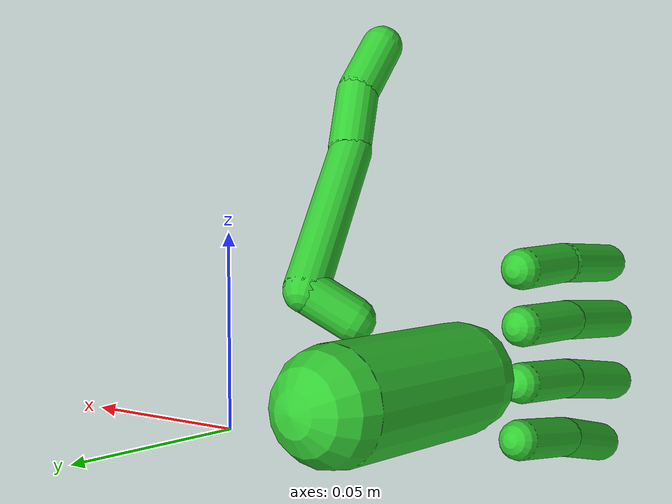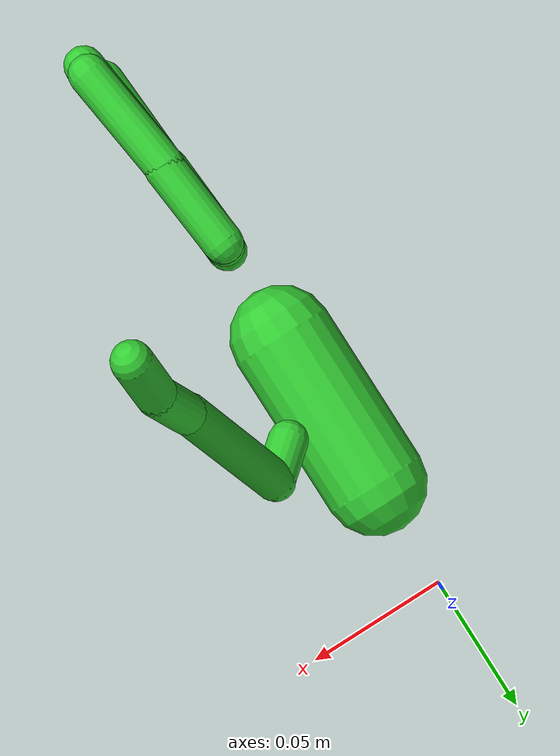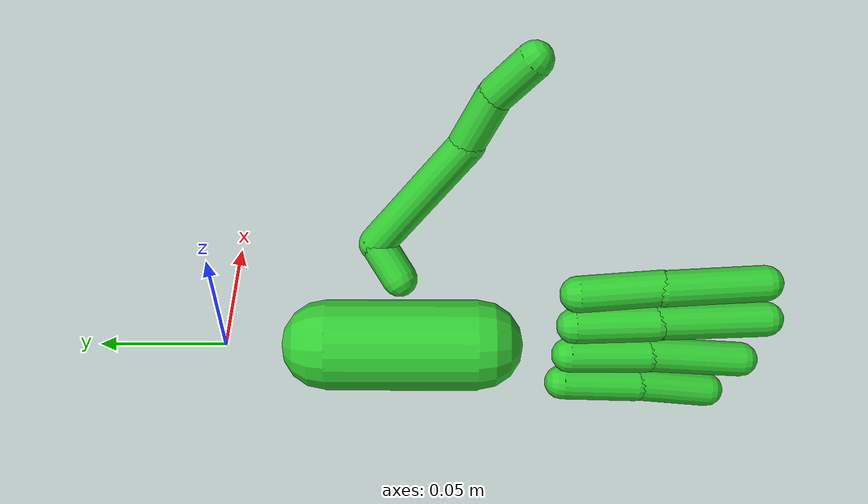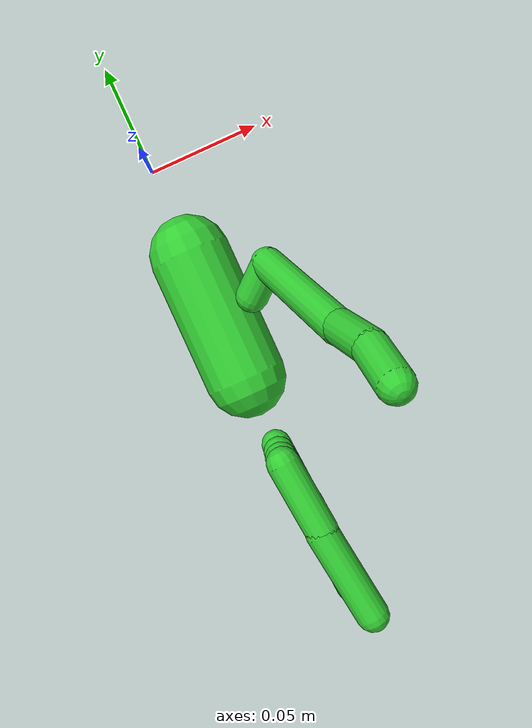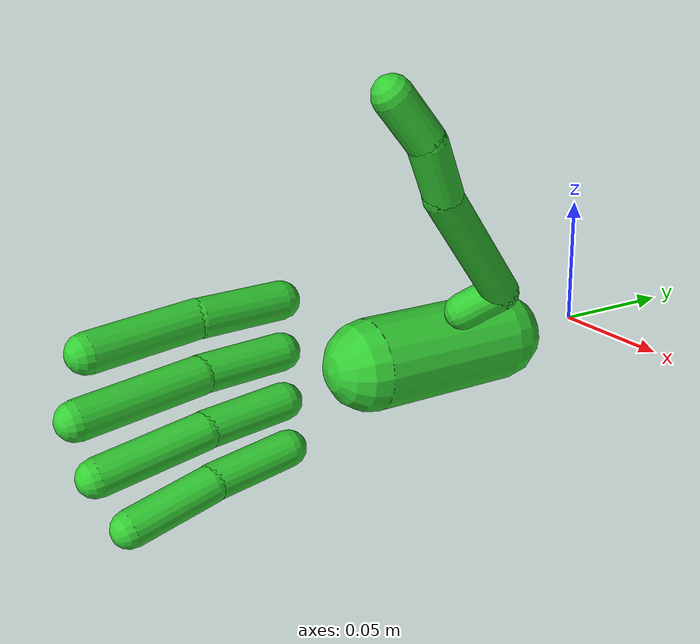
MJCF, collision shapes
<mujoco model="inspire_hand_right">
  <compiler angle="radian" meshdir="./meshes"/>

  <asset>
    <mesh name="R_hand_base_link" file="R_hand_base_link.STL"/>
    <mesh name="Link11_R" file="Link11_R.STL"/>
    <mesh name="Link12_R" file="Link12_R.STL"/>
    <mesh name="Link13_R" file="Link13_R.STL"/>
    <mesh name="Link14_R" file="Link14_R.STL"/>
    <mesh name="Link15_R" file="Link15_R.STL"/>
    <mesh name="Link16_R" file="Link16_R.STL"/>
    <mesh name="Link17_R" file="Link17_R.STL"/>
    <mesh name="Link18_R" file="Link18_R.STL"/>
    <mesh name="Link19_R" file="Link19_R.STL"/>
    <mesh name="Link20_R" file="Link20_R.STL"/>
    <mesh name="Link21_R" file="Link21_R.STL"/>
    <mesh name="Link22_R" file="Link22_R.STL"/>
  </asset>

  <worldbody>
    <!-- ── Base de la mano ─────────────────────────────────────────── -->
    <body name="R_hand_base_link" pos="0 0 0">
      <body name="R_hand_rotated_180" pos="0 0 0" quat="0 0 1 0">
      <inertial pos="-0.002551 -0.066047 0.0019357" mass="0.14143"
                fullinertia="0.0001234 8.3835e-05 7.7231e-05 2.1995e-06 1.7694e-06 1.5968e-06"/>
      <!-- Visual -->
      <geom name="R_hand_base_visual" type="mesh" mesh="R_hand_base_link"
            contype="0" conaffinity="0" group="1" rgba="0.8 0.8 0.8 1"/>
      <!-- Colisión base (cápsula simplificada) -->
      <geom name="R_hand_base_col" type="capsule" size="0.018" fromto="0 -0.04 0  0 -0.1 0"
            rgba="0.2 0.8 0.2 0.3"/>

      <!-- ── PULGAR ──────────────────────────────────────────────── -->
      <body name="R_thumb_proximal_base" pos="-0.01696 -0.0691 -0.02045"
            quat="0.499998 0.5 -0.5 0.500002">
        <inertial pos="-0.0048064 0.0009382 -0.00757" mass="0.0018869"
                  diaginertia="8.66026e-08 6.8732e-08 4.94194e-08"/>
        <joint name="R_thumb_proximal_yaw_joint" axis="0 0 -1"
               range="-0.1 1.3" damping="0.05" frictionloss="0.01"/>
        <geom type="mesh" mesh="Link11_R" contype="0" conaffinity="0" group="1" rgba="0.8 0.8 0.8 1"/>
        <geom type="capsule" size="0.007" fromto="0 0 0  -0.009 0.011 -0.009"
              rgba="0.2 0.8 0.2 0.3"/>

        <body name="R_thumb_proximal" pos="-0.0088099 0.010892 -0.00925"
              quat="0.0996843 0.0996847 0.700046 0.700044">
          <inertial pos="0.021932 0.012785 -0.0080386" mass="0.0066075"
                    diaginertia="2.78601e-06 2.43933e-06 8.64566e-07"/>
          <joint name="R_thumb_proximal_pitch_joint" axis="0 0 1"
                 range="0 0.5" damping="0.05" frictionloss="0.01"/>
          <geom type="mesh" mesh="Link12_R" contype="0" conaffinity="0" group="1" rgba="0.8 0.8 0.8 1"/>
          <geom type="capsule" size="0.007" fromto="0 0 0  0.044 0.035 -0.001"
                rgba="0.2 0.8 0.2 0.3"/>

          <body name="R_thumb_intermediate" pos="0.04407 0.034553 -0.0008">
            <inertial pos="0.0095544 -0.0016282 -0.0071997" mass="0.0037847"
                      diaginertia="4.6531e-07 4.48089e-07 2.45661e-07"/>
            <joint name="R_thumb_intermediate_joint" axis="0 0 1"
                   range="0 0.8" damping="0.05" frictionloss="0.01"/>
            <geom type="mesh" mesh="Link13_R" contype="0" conaffinity="0" group="1" rgba="0.8 0.8 0.8 1"/>
            <geom type="capsule" size="0.007" fromto="0 0 0  0.02 0.01 -0.001"
                  rgba="0.2 0.8 0.2 0.3"/>

            <body name="R_thumb_distal" pos="0.020248 0.010156 -0.0012">
              <inertial pos="0.0092888 0.0049529 -0.0060033" mass="0.0033441"
                        diaginertia="2.0026e-07 1.95247e-07 8.1593e-08"/>
              <joint name="R_thumb_distal_joint" axis="0 0 1"
                     range="0 1.2" damping="0.05" frictionloss="0.01"/>
              <geom type="mesh" mesh="Link14_R" contype="0" conaffinity="0" group="1" rgba="0.8 0.8 0.8 1"/>
              <geom type="capsule" size="0.007" fromto="0 0 0  0.015 0.013 -0.004"
                    rgba="0.2 0.8 0.2 0.3"/>
              <!-- Fingertip site -->
              <site name="R_thumb_tip" pos="0.015 0.013 -0.004" size="0.005" rgba="1 0 0 1"/>
            </body>
          </body>
        </body>
      </body>

      <!-- ── ÍNDICE ──────────────────────────────────────────────── -->
      <body name="R_index_proximal" pos="0.00028533 -0.13653 -0.032268"
            quat="0.0174454 -0.999848 0 0">
        <inertial pos="0.0012259 0.011942 -0.0060001" mass="0.0042403"
                  diaginertia="6.9398e-07 6.62871e-07 2.10909e-07"/>
        <joint name="R_index_proximal_joint" axis="0 0 1"
               range="0 1.7" damping="0.05" frictionloss="0.01"/>
        <geom type="mesh" mesh="Link15_R" contype="0" conaffinity="0" group="1" rgba="0.8 0.8 0.8 1"/>
        <geom type="capsule" size="0.007" fromto="0 0 0  -0.003 0.032 -0.001"
              rgba="0.2 0.8 0.2 0.3"/>

        <body name="R_index_intermediate" pos="-0.0026138 0.032026 -0.001">
          <inertial pos="0.0019697 0.019589 -0.005" mass="0.0045683"
                    diaginertia="7.8179e-07 7.72465e-07 8.47212e-08"/>
          <joint name="R_index_intermediate_joint" axis="0 0 1"
                 range="0 1.7" damping="0.05" frictionloss="0.01"/>
          <geom type="mesh" mesh="Link16_R" contype="0" conaffinity="0" group="1" rgba="0.8 0.8 0.8 1"/>
          <geom type="capsule" size="0.007" fromto="0 0 0  -0.005 0.04 -0.004"
                rgba="0.2 0.8 0.2 0.3"/>
          <site name="R_index_tip" pos="-0.005 0.04 -0.004" size="0.005" rgba="0 1 0 1"/>
        </body>
      </body>

      <!-- ── CORAZÓN ─────────────────────────────────────────────── -->
      <body name="R_middle_proximal" pos="0.00028533 -0.1371 -0.01295"
            quat="-3.67321e-06 -1 0 0">
        <inertial pos="0.001297 0.011934 -0.0060001" mass="0.0042403"
                  diaginertia="6.9397e-07 6.62865e-07 2.10915e-07"/>
        <joint name="R_middle_proximal_joint" axis="0 0 1"
               range="0 1.7" damping="0.05" frictionloss="0.01"/>
        <geom type="mesh" mesh="Link17_R" contype="0" conaffinity="0" group="1" rgba="0.8 0.8 0.8 1"/>
        <geom type="capsule" size="0.007" fromto="0 0 0  -0.002 0.032 -0.001"
              rgba="0.2 0.8 0.2 0.3"/>

        <body name="R_middle_intermediate" pos="-0.0024229 0.032041 -0.001">
          <inertial pos="0.001921 0.020796 -0.005" mass="0.0050396"
                    diaginertia="9.8384e-07 9.73279e-07 9.14014e-08"/>
          <joint name="R_middle_intermediate_joint" axis="0 0 1"
                 range="0 1.7" damping="0.05" frictionloss="0.01"/>
          <geom type="mesh" mesh="Link18_R" contype="0" conaffinity="0" group="1" rgba="0.8 0.8 0.8 1"/>
          <geom type="capsule" size="0.007" fromto="0 0 0  -0.005 0.045 -0.004"
                rgba="0.2 0.8 0.2 0.3"/>
          <site name="R_middle_tip" pos="-0.005 0.045 -0.004" size="0.005" rgba="0 0 1 1"/>
        </body>
      </body>

      <!-- ── ANULAR ───────────────────────────────────────────────── -->
      <body name="R_ring_proximal" pos="0.00028533 -0.13691 0.0062872"
            quat="0.0261933 0.999657 0 0">
        <inertial pos="0.001297 0.011934 -0.0060002" mass="0.0042403"
                  diaginertia="6.9397e-07 6.62865e-07 2.10915e-07"/>
        <joint name="R_ring_proximal_joint" axis="0 0 1"
               range="0 1.7" damping="0.05" frictionloss="0.01"/>
        <geom type="mesh" mesh="Link19_R" contype="0" conaffinity="0" group="1" rgba="0.8 0.8 0.8 1"/>
        <geom type="capsule" size="0.007" fromto="0 0 0  -0.002 0.032 -0.001"
              rgba="0.2 0.8 0.2 0.3"/>

        <body name="R_ring_intermediate" pos="-0.0024229 0.032041 -0.001">
          <inertial pos="0.0021753 0.019567 -0.005" mass="0.0045683"
                    diaginertia="7.8177e-07 7.72448e-07 8.4722e-08"/>
          <joint name="R_ring_intermediate_joint" axis="0 0 1"
                 range="0 1.7" damping="0.05" frictionloss="0.01"/>
          <geom type="mesh" mesh="Link20_R" contype="0" conaffinity="0" group="1" rgba="0.8 0.8 0.8 1"/>
          <geom type="capsule" size="0.007" fromto="0 0 0  -0.002 0.04 -0.004"
                rgba="0.2 0.8 0.2 0.3"/>
          <site name="R_ring_tip" pos="-0.002 0.04 -0.004" size="0.005" rgba="0 1 1 1"/>
        </body>
      </body>

      <!-- ── MEÑIQUE ─────────────────────────────────────────────── -->
      <body name="R_pinky_proximal" pos="0.00028533 -0.13571 0.025488"
            quat="0.0523224 0.99863 0 0">
        <inertial pos="0.001297 0.011934 -0.0060001" mass="0.0042403"
                  diaginertia="6.9397e-07 6.62865e-07 2.10915e-07"/>
        <joint name="R_pinky_proximal_joint" axis="0 0 1"
               range="0 1.7" damping="0.05" frictionloss="0.01"/>
        <geom type="mesh" mesh="Link21_R" contype="0" conaffinity="0" group="1" rgba="0.8 0.8 0.8 1"/>
        <geom type="capsule" size="0.007" fromto="0 0 0  -0.002 0.032 -0.001"
              rgba="0.2 0.8 0.2 0.3"/>

        <body name="R_pinky_intermediate" pos="-0.0024229 0.032041 -0.001">
          <inertial pos="0.0024748 0.016203 -0.0050031" mass="0.0035996"
                    diaginertia="4.4867e-07 4.43723e-07 6.56538e-08"/>
          <joint name="R_pinky_intermediate_joint" axis="0 0 1"
                 range="0 1.7" damping="0.05" frictionloss="0.01"/>
          <geom type="mesh" mesh="Link22_R" contype="0" conaffinity="0" group="1" rgba="0.8 0.8 0.8 1"/>
          <geom type="capsule" size="0.007" fromto="0 0 0  -0.002 0.032 -0.004"
                rgba="0.2 0.8 0.2 0.3"/>
          <site name="R_pinky_tip" pos="-0.002 0.032 -0.004" size="0.005" rgba="1 1 1 1"/>
        </body>
      </body>

    </body>
    </body>
  </worldbody>

  <!-- ── Actuadores (6 joints proximales, igual que inspire_hand.yml) ── -->
  <actuator>
    <position name="act_R_thumb_yaw"   joint="R_thumb_proximal_yaw_joint"   kp="2" ctrlrange="-0.1 1.3"/>
    <position name="act_R_thumb_pitch" joint="R_thumb_proximal_pitch_joint" kp="2" ctrlrange="0 0.5"/>
    <position name="act_R_index"       joint="R_index_proximal_joint"       kp="2" ctrlrange="0 1.7"/>
    <position name="act_R_middle"      joint="R_middle_proximal_joint"      kp="2" ctrlrange="0 1.7"/>
    <position name="act_R_ring"        joint="R_ring_proximal_joint"        kp="2" ctrlrange="0 1.7"/>
    <position name="act_R_pinky"       joint="R_pinky_proximal_joint"       kp="2" ctrlrange="0 1.7"/>
  </actuator>

  <!-- ── Joints mimicados (igual que el URDF original) ── -->
  <equality>
    <joint name="mimic_R_thumb_intermediate" joint1="R_thumb_intermediate_joint" joint2="R_thumb_proximal_pitch_joint" polycoef="0 1.6 0 0 0"/>
    <joint name="mimic_R_thumb_distal"       joint1="R_thumb_distal_joint"       joint2="R_thumb_proximal_pitch_joint" polycoef="0 2.4 0 0 0"/>
    <joint name="mimic_R_index_intermediate" joint1="R_index_intermediate_joint" joint2="R_index_proximal_joint"       polycoef="0 1.0 0 0 0"/>
    <joint name="mimic_R_middle_intermediate" joint1="R_middle_intermediate_joint" joint2="R_middle_proximal_joint"    polycoef="0 1.0 0 0 0"/>
    <joint name="mimic_R_ring_intermediate"  joint1="R_ring_intermediate_joint"  joint2="R_ring_proximal_joint"        polycoef="0 1.0 0 0 0"/>
    <joint name="mimic_R_pinky_intermediate" joint1="R_pinky_intermediate_joint" joint2="R_pinky_proximal_joint"       polycoef="0 1.0 0 0 0"/>
  </equality>

</mujoco>
